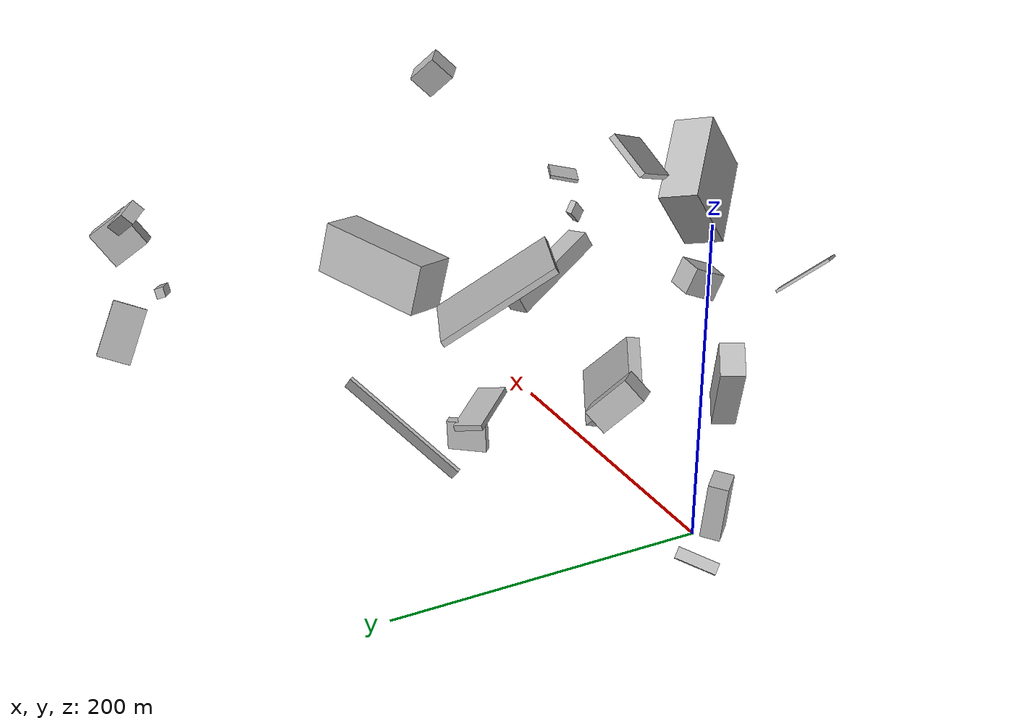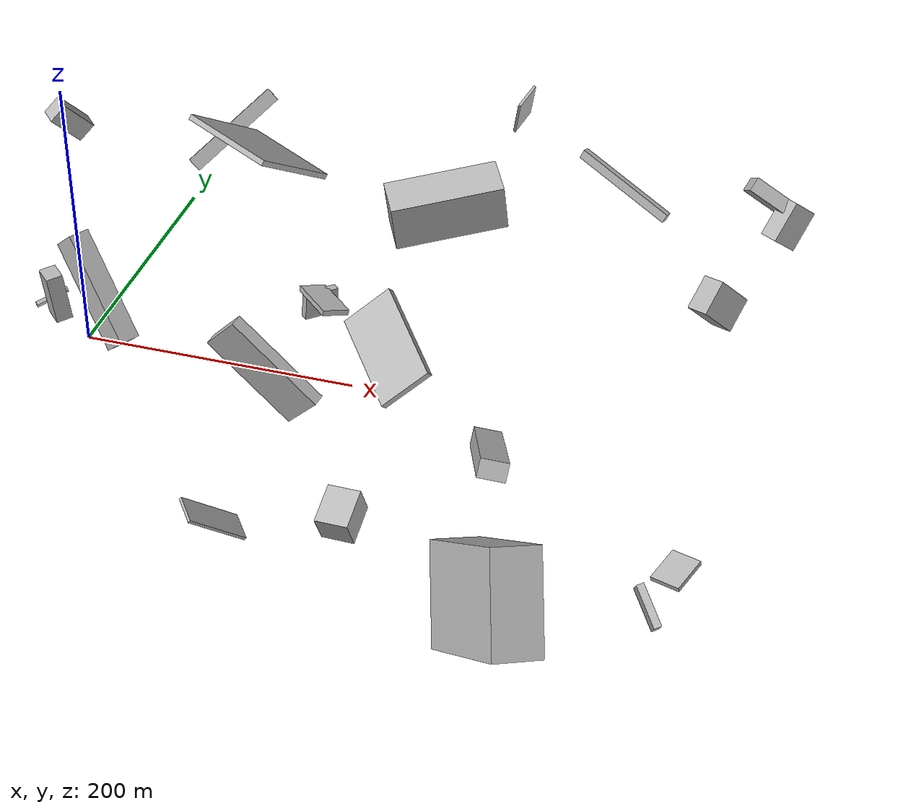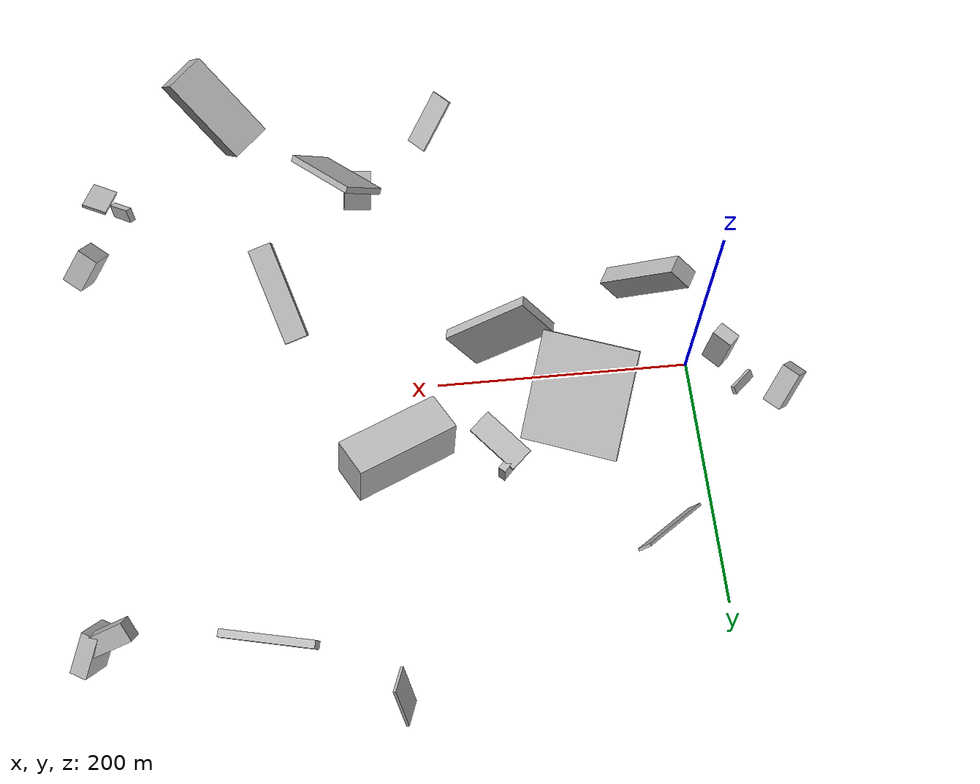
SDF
<sdf version="1.6">
 <world name="default">
  <scene>
   <sky><clouds><speed>12</speed></clouds></sky>
   <ambient>0.4 0.4 0.4 1</ambient>
   <background>0.7 0.7 0.7 1</background>
   <shadows>1</shadows>
  </scene>
  <gravity>0 0 -9.8066</gravity>
  <magnetic_field>6e-06 2.3e-05 -4.2e-05</magnetic_field>
  <physics default="0" name="default_physics" type="ode">
   <ode>
    <solver>
     <type>quick</type>
     <iters>10</iters>
     <sor>1.0</sor>
     <use_dynamic_moi_rescaling>0</use_dynamic_moi_rescaling>
    </solver>
    <constraints>
     <cfm>0</cfm>
     <erp>0.2</erp>
     <contact_max_correcting_vel>100</contact_max_correcting_vel>
     <contact_surface_layer>0.001</contact_surface_layer>
    </constraints>
   </ode>
   <max_step_size>0.004</max_step_size>
   <real_time_factor>1</real_time_factor>
   <real_time_update_rate>250</real_time_update_rate>
  </physics>
  <light name="sun" type="directional">
   <pose>0 0 10 0 0 0</pose>
   <diffuse>0.8 0.8 0.8 1</diffuse>
   <specular>0.2 0.2 0.2 1</specular>
   <attenuation>
    <range>1000</range>
    <constant>0.9</constant>
    <linear>0.01</linear>
    <quadratic>0.001</quadratic>
   </attenuation>
   <direction>-0.5 0.1 -0.9</direction>
  </light>
  <model name="building_1">
   <static>0</static>
   <pose>462.0205194969465 199.76503218590074 44.78117444808534 -0.05716515501160413 -0.6722619914834925 -2.064268520980967</pose>
   <link name="link">
    <gravity>0</gravity>
    <pose>0 0 15.5 0 0 0</pose>
    <collision name="collision"><geometry><box><size>32 13 31</size></box></geometry></collision>
    <visual name="visual">
     <cast_shadows>0</cast_shadows>
     <geometry><box><size>32 13 31</size></box></geometry>
     <material>
      <script>
       <uri>model://HANNAS_wall/materials/scripts</uri>
       <uri>model://HANNAS_wall/materials/textures</uri>
       <name>vrc/HANNAS_wall</name>
      </script>
     </material>
    </visual>
   </link>
  </model>
  <model name="building_2">
   <static>0</static>
   <pose>252.27171801421562 269.7865723807819 83.53591274519812 0.8577391439949686 -1.0690070086893158 -1.1345904457609148</pose>
   <link name="link">
    <gravity>0</gravity>
    <pose>0 0 1.0 0 0 0</pose>
    <collision name="collision"><geometry><box><size>37 22 2</size></box></geometry></collision>
    <visual name="visual">
     <cast_shadows>0</cast_shadows>
     <geometry><box><size>37 22 2</size></box></geometry>
     <material>
      <script>
       <uri>model://HANNAS_wall/materials/scripts</uri>
       <uri>model://HANNAS_wall/materials/textures</uri>
       <name>vrc/HANNAS_wall</name>
      </script>
     </material>
    </visual>
   </link>
  </model>
  <model name="building_3">
   <static>0</static>
   <pose>460.99113923421316 -173.38169659581348 43.73249325929837 -0.12267110569038212 -0.2075785762388037 1.1878381195464516</pose>
   <link name="link">
    <gravity>0</gravity>
    <pose>0 0 1.5 0 0 0</pose>
    <collision name="collision"><geometry><box><size>24 20 3</size></box></geometry></collision>
    <visual name="visual">
     <cast_shadows>0</cast_shadows>
     <geometry><box><size>24 20 3</size></box></geometry>
     <material>
      <script>
       <uri>model://HANNAS_wall/materials/scripts</uri>
       <uri>model://HANNAS_wall/materials/textures</uri>
       <name>vrc/HANNAS_wall</name>
      </script>
     </material>
    </visual>
   </link>
  </model>
  <model name="building_4">
   <static>0</static>
   <pose>449.28053885851756 212.2531584362888 73.37795308474672 0.8274578143187292 -0.723427825016057 1.0615961263470541</pose>
   <link name="link">
    <gravity>0</gravity>
    <pose>0 0 7.5 0 0 0</pose>
    <collision name="collision"><geometry><box><size>11 36 15</size></box></geometry></collision>
    <visual name="visual">
     <cast_shadows>0</cast_shadows>
     <geometry><box><size>11 36 15</size></box></geometry>
     <material>
      <script>
       <uri>model://HANNAS_wall/materials/scripts</uri>
       <uri>model://HANNAS_wall/materials/textures</uri>
       <name>vrc/HANNAS_wall</name>
      </script>
     </material>
    </visual>
   </link>
  </model>
  <model name="building_5">
   <static>0</static>
   <pose>75.71729674303872 92.69400592082778 137.4384360148254 1.820592676248535 -0.9767834719589776 0.9388408774507135</pose>
   <link name="link">
    <gravity>0</gravity>
    <pose>0 0 35.5 0 0 0</pose>
    <collision name="collision"><geometry><box><size>4 80 71</size></box></geometry></collision>
    <visual name="visual">
     <cast_shadows>0</cast_shadows>
     <geometry><box><size>4 80 71</size></box></geometry>
     <material>
      <script>
       <uri>model://HANNAS_wall/materials/scripts</uri>
       <uri>model://HANNAS_wall/materials/textures</uri>
       <name>vrc/HANNAS_wall</name>
      </script>
     </material>
    </visual>
   </link>
  </model>
  <model name="building_6">
   <static>0</static>
   <pose>286.51071987818307 -146.99356569042683 120.51659007977389 1.0683747331123967 -0.759209866518632 -2.085607342468537</pose>
   <link name="link">
    <gravity>0</gravity>
    <pose>0 0 32.5 0 0 0</pose>
    <collision name="collision"><geometry><box><size>5 36 65</size></box></geometry></collision>
    <visual name="visual">
     <cast_shadows>0</cast_shadows>
     <geometry><box><size>5 36 65</size></box></geometry>
     <material>
      <script>
       <uri>model://HANNAS_wall/materials/scripts</uri>
       <uri>model://HANNAS_wall/materials/textures</uri>
       <name>vrc/HANNAS_wall</name>
      </script>
     </material>
    </visual>
   </link>
  </model>
  <model name="building_7">
   <static>0</static>
   <pose>118.67650028885507 -30.601331803506955 51.901090708165384 -2.869413338121112 -0.8062773033383218 -0.4269596932139333</pose>
   <link name="link">
    <gravity>0</gravity>
    <pose>0 0 39.5 0 0 0</pose>
    <collision name="collision"><geometry><box><size>39 9 79</size></box></geometry></collision>
    <visual name="visual">
     <cast_shadows>0</cast_shadows>
     <geometry><box><size>39 9 79</size></box></geometry>
     <material>
      <script>
       <uri>model://HANNAS_wall/materials/scripts</uri>
       <uri>model://HANNAS_wall/materials/textures</uri>
       <name>vrc/HANNAS_wall</name>
      </script>
     </material>
    </visual>
   </link>
  </model>
  <model name="building_8">
   <static>0</static>
   <pose>150.84893560094594 55.42100942822682 25.749062393171513 1.800289551271759 0.13043355447933805 2.296427336092593</pose>
   <link name="link">
    <gravity>0</gravity>
    <pose>0 0 10.0 0 0 0</pose>
    <collision name="collision"><geometry><box><size>45 4 20</size></box></geometry></collision>
    <visual name="visual">
     <cast_shadows>0</cast_shadows>
     <geometry><box><size>45 4 20</size></box></geometry>
     <material>
      <script>
       <uri>model://HANNAS_wall/materials/scripts</uri>
       <uri>model://HANNAS_wall/materials/textures</uri>
       <name>vrc/HANNAS_wall</name>
      </script>
     </material>
    </visual>
   </link>
  </model>
  <model name="building_9">
   <static>0</static>
   <pose>159.40271420901067 84.3165415804045 10.809383644365079 -1.5107192367936677 -0.0035837579581767314 2.375705637751398</pose>
   <link name="link">
    <gravity>0</gravity>
    <pose>0 0 13.0 0 0 0</pose>
    <collision name="collision"><geometry><box><size>6 20 26</size></box></geometry></collision>
    <visual name="visual">
     <cast_shadows>0</cast_shadows>
     <geometry><box><size>6 20 26</size></box></geometry>
     <material>
      <script>
       <uri>model://HANNAS_wall/materials/scripts</uri>
       <uri>model://HANNAS_wall/materials/textures</uri>
       <name>vrc/HANNAS_wall</name>
      </script>
     </material>
    </visual>
   </link>
  </model>
  <model name="building_10">
   <static>0</static>
   <pose>247.43678467996435 78.92828909205151 98.0974173455499 1.4226858966455562 0.13349530182227537 -2.6876416260302807</pose>
   <link name="link">
    <gravity>0</gravity>
    <pose>0 0 15.5 0 0 0</pose>
    <collision name="collision"><geometry><box><size>80 35 31</size></box></geometry></collision>
    <visual name="visual">
     <cast_shadows>0</cast_shadows>
     <geometry><box><size>80 35 31</size></box></geometry>
     <material>
      <script>
       <uri>model://HANNAS_wall/materials/scripts</uri>
       <uri>model://HANNAS_wall/materials/textures</uri>
       <name>vrc/HANNAS_wall</name>
      </script>
     </material>
    </visual>
   </link>
  </model>
  <model name="building_11">
   <static>0</static>
   <pose>-27.551506519812776 -3.198646381888431 31.988059058510416 1.4735274345794684 0.056504118451992345 2.3355604831503767</pose>
   <link name="link">
    <gravity>0</gravity>
    <pose>0 0 6.0 0 0 0</pose>
    <collision name="collision"><geometry><box><size>17 36 12</size></box></geometry></collision>
    <visual name="visual">
     <cast_shadows>0</cast_shadows>
     <geometry><box><size>17 36 12</size></box></geometry>
     <material>
      <script>
       <uri>model://HANNAS_wall/materials/scripts</uri>
       <uri>model://HANNAS_wall/materials/textures</uri>
       <name>vrc/HANNAS_wall</name>
      </script>
     </material>
    </visual>
   </link>
  </model>
  <model name="building_12">
   <static>0</static>
   <pose>249.87856766080506 -181.29605182110944 28.1705691072694 1.1716448586628079 0.048987484260531004 3.07096318942866</pose>
   <link name="link">
    <gravity>0</gravity>
    <pose>0 0 13.0 0 0 0</pose>
    <collision name="collision"><geometry><box><size>22 21 26</size></box></geometry></collision>
    <visual name="visual">
     <cast_shadows>0</cast_shadows>
     <geometry><box><size>22 21 26</size></box></geometry>
     <material>
      <script>
       <uri>model://HANNAS_wall/materials/scripts</uri>
       <uri>model://HANNAS_wall/materials/textures</uri>
       <name>vrc/HANNAS_wall</name>
      </script>
     </material>
    </visual>
   </link>
  </model>
  <model name="building_13">
   <static>0</static>
   <pose>321.8350615360224 -78.07215544839407 35.09634905288945 -2.918885662582482 0.4166435962052717 1.8956611885904375</pose>
   <link name="link">
    <gravity>0</gravity>
    <pose>0 0 6.5 0 0 0</pose>
    <collision name="collision"><geometry><box><size>80 19 13</size></box></geometry></collision>
    <visual name="visual">
     <cast_shadows>0</cast_shadows>
     <geometry><box><size>80 19 13</size></box></geometry>
     <material>
      <script>
       <uri>model://HANNAS_wall/materials/scripts</uri>
       <uri>model://HANNAS_wall/materials/textures</uri>
       <name>vrc/HANNAS_wall</name>
      </script>
     </material>
    </visual>
   </link>
  </model>
  <model name="building_14">
   <static>0</static>
   <pose>376.3290582619408 -234.45083865726141 55.9491806145338 -1.1613555845753867 -0.9243328301704274 1.8962802302390616</pose>
   <link name="link">
    <gravity>0</gravity>
    <pose>0 0 16.5 0 0 0</pose>
    <collision name="collision"><geometry><box><size>64 78 33</size></box></geometry></collision>
    <visual name="visual">
     <cast_shadows>0</cast_shadows>
     <geometry><box><size>64 78 33</size></box></geometry>
     <material>
      <script>
       <uri>model://HANNAS_wall/materials/scripts</uri>
       <uri>model://HANNAS_wall/materials/textures</uri>
       <name>vrc/HANNAS_wall</name>
      </script>
     </material>
    </visual>
   </link>
  </model>
  <model name="building_15">
   <static>0</static>
   <pose>-33.36134040010228 90.78965699592004 117.59629806139358 0.11179776434639244 -0.7488884848737507 0.6876911096594924</pose>
   <link name="link">
    <gravity>0</gravity>
    <pose>0 0 15.0 0 0 0</pose>
    <collision name="collision"><geometry><box><size>15 14 30</size></box></geometry></collision>
    <visual name="visual">
     <cast_shadows>0</cast_shadows>
     <geometry><box><size>15 14 30</size></box></geometry>
     <material>
      <script>
       <uri>model://HANNAS_wall/materials/scripts</uri>
       <uri>model://HANNAS_wall/materials/textures</uri>
       <name>vrc/HANNAS_wall</name>
      </script>
     </material>
    </visual>
   </link>
  </model>
  <model name="building_16">
   <static>0</static>
   <pose>460.9364479474799 -43.063760129595615 143.7474057476981 -0.313203052907236 -0.7528780434794189 1.1455668859785708</pose>
   <link name="link">
    <gravity>0</gravity>
    <pose>0 0 13.0 0 0 0</pose>
    <collision name="collision"><geometry><box><size>22 16 26</size></box></geometry></collision>
    <visual name="visual">
     <cast_shadows>0</cast_shadows>
     <geometry><box><size>22 16 26</size></box></geometry>
     <material>
      <script>
       <uri>model://HANNAS_wall/materials/scripts</uri>
       <uri>model://HANNAS_wall/materials/textures</uri>
       <name>vrc/HANNAS_wall</name>
      </script>
     </material>
    </visual>
   </link>
  </model>
  <model name="building_17">
   <static>0</static>
   <pose>448.47701766950127 -176.23889587468105 16.071158517413135 1.8725442191806438 -0.9129256434519583 -1.1949795344204739</pose>
   <link name="link">
    <gravity>0</gravity>
    <pose>0 0 2.5 0 0 0</pose>
    <collision name="collision"><geometry><box><size>11 28 5</size></box></geometry></collision>
    <visual name="visual">
     <cast_shadows>0</cast_shadows>
     <geometry><box><size>11 28 5</size></box></geometry>
     <material>
      <script>
       <uri>model://HANNAS_wall/materials/scripts</uri>
       <uri>model://HANNAS_wall/materials/textures</uri>
       <name>vrc/HANNAS_wall</name>
      </script>
     </material>
    </visual>
   </link>
  </model>
  <model name="building_18">
   <static>0</static>
   <pose>55.66371809982465 -56.3559019711262 44.89122813739054 -0.04266263394481762 -0.7109678338470138 -0.49846570332364604</pose>
   <link name="link">
    <gravity>0</gravity>
    <pose>0 0 40.0 0 0 0</pose>
    <collision name="collision"><geometry><box><size>21 15 80</size></box></geometry></collision>
    <visual name="visual">
     <cast_shadows>0</cast_shadows>
     <geometry><box><size>21 15 80</size></box></geometry>
     <material>
      <script>
       <uri>model://HANNAS_wall/materials/scripts</uri>
       <uri>model://HANNAS_wall/materials/textures</uri>
       <name>vrc/HANNAS_wall</name>
      </script>
     </material>
    </visual>
   </link>
  </model>
  <model name="building_19">
   <static>0</static>
   <pose>345.21259570618065 214.7085889801172 67.14311913804644 -2.8919515486464427 -0.38372921560649687 2.8044485083754562</pose>
   <link name="link">
    <gravity>0</gravity>
    <pose>0 0 3.5 0 0 0</pose>
    <collision name="collision"><geometry><box><size>80 6 7</size></box></geometry></collision>
    <visual name="visual">
     <cast_shadows>0</cast_shadows>
     <geometry><box><size>80 6 7</size></box></geometry>
     <material>
      <script>
       <uri>model://HANNAS_wall/materials/scripts</uri>
       <uri>model://HANNAS_wall/materials/textures</uri>
       <name>vrc/HANNAS_wall</name>
      </script>
     </material>
    </visual>
   </link>
  </model>
  <model name="building_20">
   <static>0</static>
   <pose>55.08223228829138 167.40741037776831 84.52236107733165 0.4427446733661787 0.6096512955010827 -2.420772622830413</pose>
   <link name="link">
    <gravity>0</gravity>
    <pose>0 0 5.5 0 0 0</pose>
    <collision name="collision"><geometry><box><size>80 2 11</size></box></geometry></collision>
    <visual name="visual">
     <cast_shadows>0</cast_shadows>
     <geometry><box><size>80 2 11</size></box></geometry>
     <material>
      <script>
       <uri>model://HANNAS_wall/materials/scripts</uri>
       <uri>model://HANNAS_wall/materials/textures</uri>
       <name>vrc/HANNAS_wall</name>
      </script>
     </material>
    </visual>
   </link>
  </model>
  <model name="building_21">
   <static>0</static>
   <pose>-40.84822976399343 25.1347518958299 12.267452301560008 -2.2940892064417766 0.26216279479820354 -2.3750845279140593</pose>
   <link name="link">
    <gravity>0</gravity>
    <pose>0 0 1.5 0 0 0</pose>
    <collision name="collision"><geometry><box><size>25 7 3</size></box></geometry></collision>
    <visual name="visual">
     <cast_shadows>0</cast_shadows>
     <geometry><box><size>25 7 3</size></box></geometry>
     <material>
      <script>
       <uri>model://HANNAS_wall/materials/scripts</uri>
       <uri>model://HANNAS_wall/materials/textures</uri>
       <name>vrc/HANNAS_wall</name>
      </script>
     </material>
    </visual>
   </link>
  </model>
  <model name="building_22">
   <static>0</static>
   <pose>185.48947078231708 -218.16238932880287 52.54112714270266 -0.2569208285726824 -0.6908908031688498 -2.3063070945754136</pose>
   <link name="link">
    <gravity>0</gravity>
    <pose>0 0 1.0 0 0 0</pose>
    <collision name="collision"><geometry><box><size>46 19 2</size></box></geometry></collision>
    <visual name="visual">
     <cast_shadows>0</cast_shadows>
     <geometry><box><size>46 19 2</size></box></geometry>
     <material>
      <script>
       <uri>model://HANNAS_wall/materials/scripts</uri>
       <uri>model://HANNAS_wall/materials/textures</uri>
       <name>vrc/HANNAS_wall</name>
      </script>
     </material>
    </visual>
   </link>
  </model>
 </world>
</sdf>
